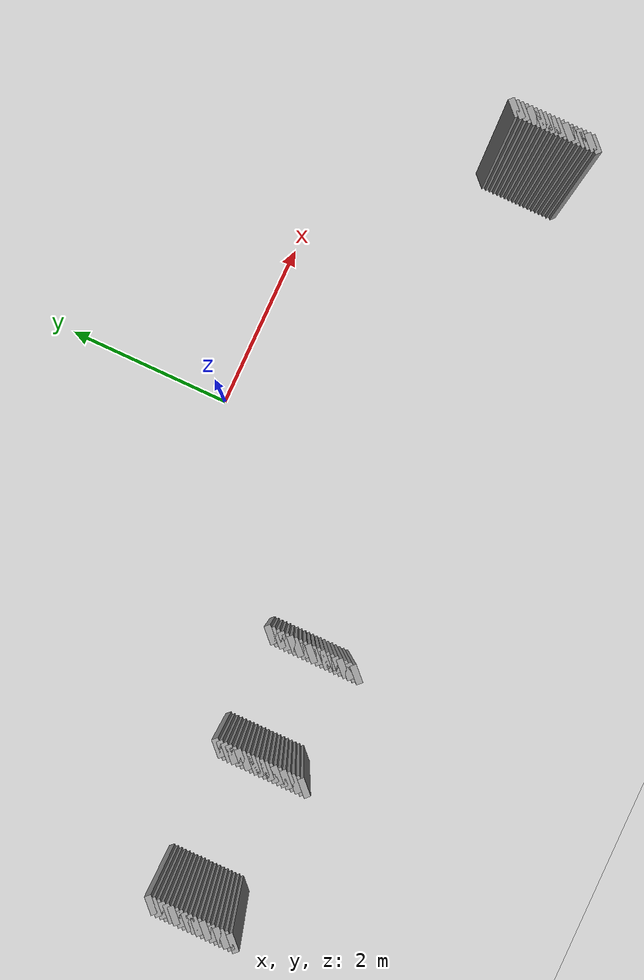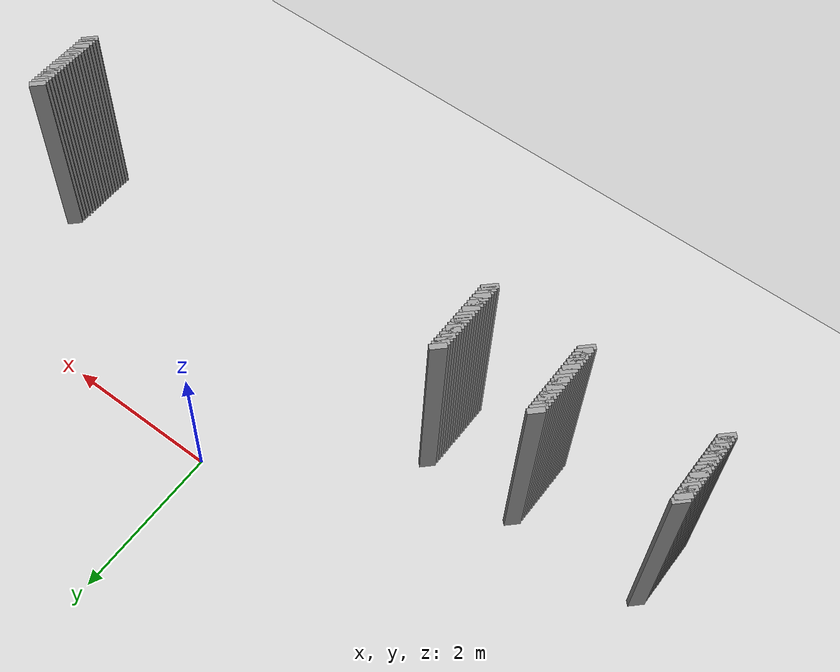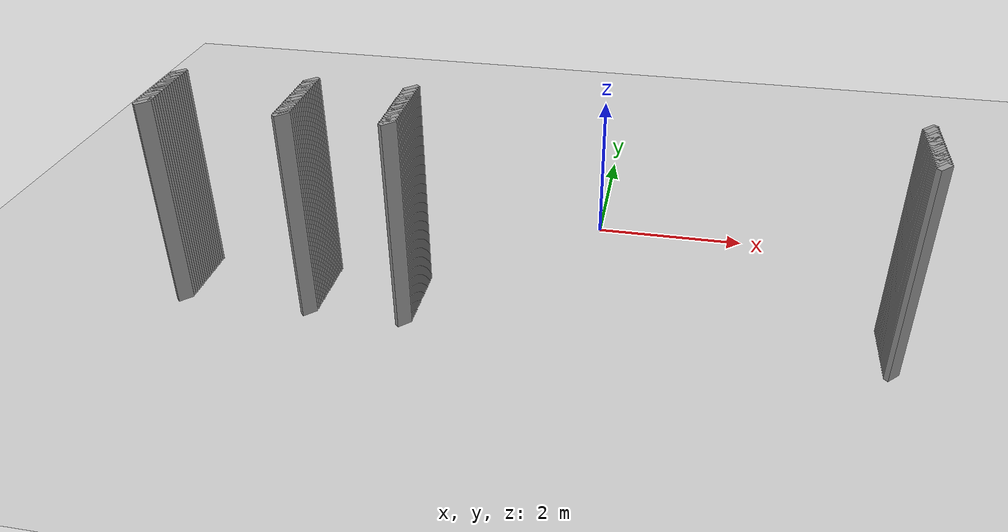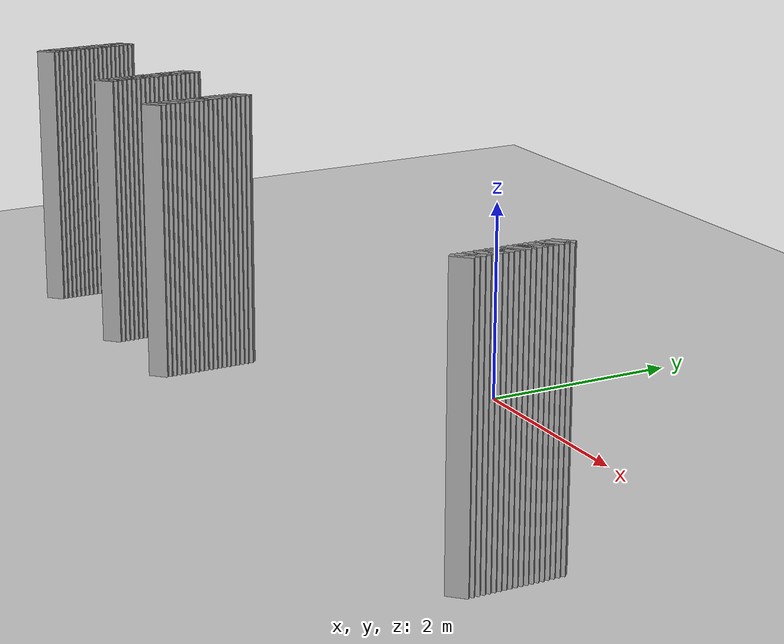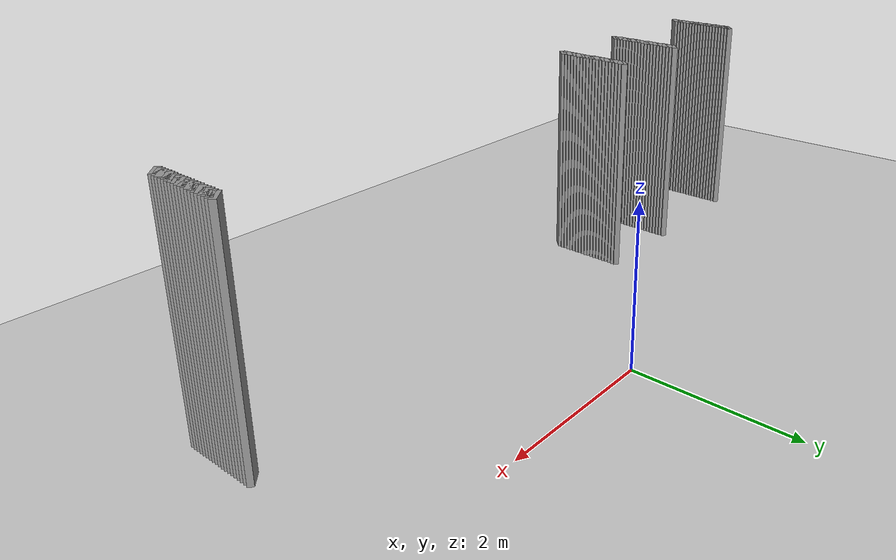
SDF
<sdf version="1.5">
 <world name="default">
  <include><uri>model://ground_plane</uri></include>
  <include><uri>model://sun</uri></include>
  <model name="grey_wall_1022">
   <static>1</static>
   <link name="link">
    <pose>-3.425 -1.675  1.4 0 0 -0.785398163397</pose>
    <collision name="collision"><geometry><box><size>0.0707106781187 .2  2.8</size></box></geometry></collision>
    <visual name="visual">
     <cast_shadows>0</cast_shadows>
     <geometry><box><size>0.0707106781187 .2  2.8</size></box></geometry>
     <material>
      <script>
       <uri>model://grey_wall/materials/scripts</uri>
       <uri>model://grey_wall/materials/textures</uri>
       <name>vrc/grey_wall</name>
      </script>
     </material>
    </visual>
   </link>
  </model>
  <model name="grey_wall_1023">
   <static>1</static>
   <link name="link">
    <pose>-2.175 -1.675  1.4 0 0 -0.785398163397</pose>
    <collision name="collision"><geometry><box><size>0.0707106781187 .2  2.8</size></box></geometry></collision>
    <visual name="visual">
     <cast_shadows>0</cast_shadows>
     <geometry><box><size>0.0707106781187 .2  2.8</size></box></geometry>
     <material>
      <script>
       <uri>model://grey_wall/materials/scripts</uri>
       <uri>model://grey_wall/materials/textures</uri>
       <name>vrc/grey_wall</name>
      </script>
     </material>
    </visual>
   </link>
  </model>
  <model name="grey_wall_1024">
   <static>1</static>
   <link name="link">
    <pose>3.725 -1.675  1.4 0 0 -0.785398163397</pose>
    <collision name="collision"><geometry><box><size>0.0707106781187 .2  2.8</size></box></geometry></collision>
    <visual name="visual">
     <cast_shadows>0</cast_shadows>
     <geometry><box><size>0.0707106781187 .2  2.8</size></box></geometry>
     <material>
      <script>
       <uri>model://grey_wall/materials/scripts</uri>
       <uri>model://grey_wall/materials/textures</uri>
       <name>vrc/grey_wall</name>
      </script>
     </material>
    </visual>
   </link>
  </model>
  <model name="grey_wall_1025">
   <static>1</static>
   <link name="link">
    <pose>-5.125 -1.725  1.4 0 0 -0.785398163397</pose>
    <collision name="collision"><geometry><box><size>0.0707106781187 .2  2.8</size></box></geometry></collision>
    <visual name="visual">
     <cast_shadows>0</cast_shadows>
     <geometry><box><size>0.0707106781187 .2  2.8</size></box></geometry>
     <material>
      <script>
       <uri>model://grey_wall/materials/scripts</uri>
       <uri>model://grey_wall/materials/textures</uri>
       <name>vrc/grey_wall</name>
      </script>
     </material>
    </visual>
   </link>
  </model>
  <model name="grey_wall_1026">
   <static>1</static>
   <link name="link">
    <pose>-3.425 -1.725  1.4 0 0 -0.785398163397</pose>
    <collision name="collision"><geometry><box><size>0.0707106781187 .2  2.8</size></box></geometry></collision>
    <visual name="visual">
     <cast_shadows>0</cast_shadows>
     <geometry><box><size>0.0707106781187 .2  2.8</size></box></geometry>
     <material>
      <script>
       <uri>model://grey_wall/materials/scripts</uri>
       <uri>model://grey_wall/materials/textures</uri>
       <name>vrc/grey_wall</name>
      </script>
     </material>
    </visual>
   </link>
  </model>
  <model name="grey_wall_1027">
   <static>1</static>
   <link name="link">
    <pose>-2.175 -1.725  1.4 0 0 -0.785398163397</pose>
    <collision name="collision"><geometry><box><size>0.0707106781187 .2  2.8</size></box></geometry></collision>
    <visual name="visual">
     <cast_shadows>0</cast_shadows>
     <geometry><box><size>0.0707106781187 .2  2.8</size></box></geometry>
     <material>
      <script>
       <uri>model://grey_wall/materials/scripts</uri>
       <uri>model://grey_wall/materials/textures</uri>
       <name>vrc/grey_wall</name>
      </script>
     </material>
    </visual>
   </link>
  </model>
  <model name="grey_wall_1028">
   <static>1</static>
   <link name="link">
    <pose>3.725 -1.725  1.4 0 0 -0.785398163397</pose>
    <collision name="collision"><geometry><box><size>0.0707106781187 .2  2.8</size></box></geometry></collision>
    <visual name="visual">
     <cast_shadows>0</cast_shadows>
     <geometry><box><size>0.0707106781187 .2  2.8</size></box></geometry>
     <material>
      <script>
       <uri>model://grey_wall/materials/scripts</uri>
       <uri>model://grey_wall/materials/textures</uri>
       <name>vrc/grey_wall</name>
      </script>
     </material>
    </visual>
   </link>
  </model>
  <model name="grey_wall_1029">
   <static>1</static>
   <link name="link">
    <pose>-5.125 -1.775  1.4 0 0 -0.785398163397</pose>
    <collision name="collision"><geometry><box><size>0.0707106781187 .2  2.8</size></box></geometry></collision>
    <visual name="visual">
     <cast_shadows>0</cast_shadows>
     <geometry><box><size>0.0707106781187 .2  2.8</size></box></geometry>
     <material>
      <script>
       <uri>model://grey_wall/materials/scripts</uri>
       <uri>model://grey_wall/materials/textures</uri>
       <name>vrc/grey_wall</name>
      </script>
     </material>
    </visual>
   </link>
  </model>
  <model name="grey_wall_1030">
   <static>1</static>
   <link name="link">
    <pose>-3.425 -1.775  1.4 0 0 -0.785398163397</pose>
    <collision name="collision"><geometry><box><size>0.0707106781187 .2  2.8</size></box></geometry></collision>
    <visual name="visual">
     <cast_shadows>0</cast_shadows>
     <geometry><box><size>0.0707106781187 .2  2.8</size></box></geometry>
     <material>
      <script>
       <uri>model://grey_wall/materials/scripts</uri>
       <uri>model://grey_wall/materials/textures</uri>
       <name>vrc/grey_wall</name>
      </script>
     </material>
    </visual>
   </link>
  </model>
  <model name="grey_wall_1031">
   <static>1</static>
   <link name="link">
    <pose>-2.175 -1.775  1.4 0 0 -0.785398163397</pose>
    <collision name="collision"><geometry><box><size>0.0707106781187 .2  2.8</size></box></geometry></collision>
    <visual name="visual">
     <cast_shadows>0</cast_shadows>
     <geometry><box><size>0.0707106781187 .2  2.8</size></box></geometry>
     <material>
      <script>
       <uri>model://grey_wall/materials/scripts</uri>
       <uri>model://grey_wall/materials/textures</uri>
       <name>vrc/grey_wall</name>
      </script>
     </material>
    </visual>
   </link>
  </model>
  <model name="grey_wall_1032">
   <static>1</static>
   <link name="link">
    <pose>3.725 -1.775  1.4 0 0 -0.785398163397</pose>
    <collision name="collision"><geometry><box><size>0.0707106781187 .2  2.8</size></box></geometry></collision>
    <visual name="visual">
     <cast_shadows>0</cast_shadows>
     <geometry><box><size>0.0707106781187 .2  2.8</size></box></geometry>
     <material>
      <script>
       <uri>model://grey_wall/materials/scripts</uri>
       <uri>model://grey_wall/materials/textures</uri>
       <name>vrc/grey_wall</name>
      </script>
     </material>
    </visual>
   </link>
  </model>
  <model name="grey_wall_1033">
   <static>1</static>
   <link name="link">
    <pose>-5.125 -1.825  1.4 0 0 -0.785398163397</pose>
    <collision name="collision"><geometry><box><size>0.0707106781187 .2  2.8</size></box></geometry></collision>
    <visual name="visual">
     <cast_shadows>0</cast_shadows>
     <geometry><box><size>0.0707106781187 .2  2.8</size></box></geometry>
     <material>
      <script>
       <uri>model://grey_wall/materials/scripts</uri>
       <uri>model://grey_wall/materials/textures</uri>
       <name>vrc/grey_wall</name>
      </script>
     </material>
    </visual>
   </link>
  </model>
  <model name="grey_wall_1034">
   <static>1</static>
   <link name="link">
    <pose>-3.425 -1.825  1.4 0 0 -0.785398163397</pose>
    <collision name="collision"><geometry><box><size>0.0707106781187 .2  2.8</size></box></geometry></collision>
    <visual name="visual">
     <cast_shadows>0</cast_shadows>
     <geometry><box><size>0.0707106781187 .2  2.8</size></box></geometry>
     <material>
      <script>
       <uri>model://grey_wall/materials/scripts</uri>
       <uri>model://grey_wall/materials/textures</uri>
       <name>vrc/grey_wall</name>
      </script>
     </material>
    </visual>
   </link>
  </model>
  <model name="grey_wall_1035">
   <static>1</static>
   <link name="link">
    <pose>-2.175 -1.825  1.4 0 0 -0.785398163397</pose>
    <collision name="collision"><geometry><box><size>0.0707106781187 .2  2.8</size></box></geometry></collision>
    <visual name="visual">
     <cast_shadows>0</cast_shadows>
     <geometry><box><size>0.0707106781187 .2  2.8</size></box></geometry>
     <material>
      <script>
       <uri>model://grey_wall/materials/scripts</uri>
       <uri>model://grey_wall/materials/textures</uri>
       <name>vrc/grey_wall</name>
      </script>
     </material>
    </visual>
   </link>
  </model>
  <model name="grey_wall_1036">
   <static>1</static>
   <link name="link">
    <pose>3.725 -1.825  1.4 0 0 -0.785398163397</pose>
    <collision name="collision"><geometry><box><size>0.0707106781187 .2  2.8</size></box></geometry></collision>
    <visual name="visual">
     <cast_shadows>0</cast_shadows>
     <geometry><box><size>0.0707106781187 .2  2.8</size></box></geometry>
     <material>
      <script>
       <uri>model://grey_wall/materials/scripts</uri>
       <uri>model://grey_wall/materials/textures</uri>
       <name>vrc/grey_wall</name>
      </script>
     </material>
    </visual>
   </link>
  </model>
  <model name="grey_wall_1037">
   <static>1</static>
   <link name="link">
    <pose>-5.125 -1.875  1.4 0 0 -0.785398163397</pose>
    <collision name="collision"><geometry><box><size>0.0707106781187 .2  2.8</size></box></geometry></collision>
    <visual name="visual">
     <cast_shadows>0</cast_shadows>
     <geometry><box><size>0.0707106781187 .2  2.8</size></box></geometry>
     <material>
      <script>
       <uri>model://grey_wall/materials/scripts</uri>
       <uri>model://grey_wall/materials/textures</uri>
       <name>vrc/grey_wall</name>
      </script>
     </material>
    </visual>
   </link>
  </model>
  <model name="grey_wall_1038">
   <static>1</static>
   <link name="link">
    <pose>-3.425 -1.875  1.4 0 0 -0.785398163397</pose>
    <collision name="collision"><geometry><box><size>0.0707106781187 .2  2.8</size></box></geometry></collision>
    <visual name="visual">
     <cast_shadows>0</cast_shadows>
     <geometry><box><size>0.0707106781187 .2  2.8</size></box></geometry>
     <material>
      <script>
       <uri>model://grey_wall/materials/scripts</uri>
       <uri>model://grey_wall/materials/textures</uri>
       <name>vrc/grey_wall</name>
      </script>
     </material>
    </visual>
   </link>
  </model>
  <model name="grey_wall_1039">
   <static>1</static>
   <link name="link">
    <pose>-2.175 -1.875  1.4 0 0 -0.785398163397</pose>
    <collision name="collision"><geometry><box><size>0.0707106781187 .2  2.8</size></box></geometry></collision>
    <visual name="visual">
     <cast_shadows>0</cast_shadows>
     <geometry><box><size>0.0707106781187 .2  2.8</size></box></geometry>
     <material>
      <script>
       <uri>model://grey_wall/materials/scripts</uri>
       <uri>model://grey_wall/materials/textures</uri>
       <name>vrc/grey_wall</name>
      </script>
     </material>
    </visual>
   </link>
  </model>
  <model name="grey_wall_1040">
   <static>1</static>
   <link name="link">
    <pose>3.725 -1.875  1.4 0 0 -0.785398163397</pose>
    <collision name="collision"><geometry><box><size>0.0707106781187 .2  2.8</size></box></geometry></collision>
    <visual name="visual">
     <cast_shadows>0</cast_shadows>
     <geometry><box><size>0.0707106781187 .2  2.8</size></box></geometry>
     <material>
      <script>
       <uri>model://grey_wall/materials/scripts</uri>
       <uri>model://grey_wall/materials/textures</uri>
       <name>vrc/grey_wall</name>
      </script>
     </material>
    </visual>
   </link>
  </model>
  <model name="grey_wall_1041">
   <static>1</static>
   <link name="link">
    <pose>-5.125 -1.925  1.4 0 0 -0.785398163397</pose>
    <collision name="collision"><geometry><box><size>0.0707106781187 .2  2.8</size></box></geometry></collision>
    <visual name="visual">
     <cast_shadows>0</cast_shadows>
     <geometry><box><size>0.0707106781187 .2  2.8</size></box></geometry>
     <material>
      <script>
       <uri>model://grey_wall/materials/scripts</uri>
       <uri>model://grey_wall/materials/textures</uri>
       <name>vrc/grey_wall</name>
      </script>
     </material>
    </visual>
   </link>
  </model>
  <model name="grey_wall_1042">
   <static>1</static>
   <link name="link">
    <pose>-3.425 -1.925  1.4 0 0 -0.785398163397</pose>
    <collision name="collision"><geometry><box><size>0.0707106781187 .2  2.8</size></box></geometry></collision>
    <visual name="visual">
     <cast_shadows>0</cast_shadows>
     <geometry><box><size>0.0707106781187 .2  2.8</size></box></geometry>
     <material>
      <script>
       <uri>model://grey_wall/materials/scripts</uri>
       <uri>model://grey_wall/materials/textures</uri>
       <name>vrc/grey_wall</name>
      </script>
     </material>
    </visual>
   </link>
  </model>
  <model name="grey_wall_1043">
   <static>1</static>
   <link name="link">
    <pose>-2.175 -1.925  1.4 0 0 -0.785398163397</pose>
    <collision name="collision"><geometry><box><size>0.0707106781187 .2  2.8</size></box></geometry></collision>
    <visual name="visual">
     <cast_shadows>0</cast_shadows>
     <geometry><box><size>0.0707106781187 .2  2.8</size></box></geometry>
     <material>
      <script>
       <uri>model://grey_wall/materials/scripts</uri>
       <uri>model://grey_wall/materials/textures</uri>
       <name>vrc/grey_wall</name>
      </script>
     </material>
    </visual>
   </link>
  </model>
  <model name="grey_wall_1044">
   <static>1</static>
   <link name="link">
    <pose>3.725 -1.925  1.4 0 0 -0.785398163397</pose>
    <collision name="collision"><geometry><box><size>0.0707106781187 .2  2.8</size></box></geometry></collision>
    <visual name="visual">
     <cast_shadows>0</cast_shadows>
     <geometry><box><size>0.0707106781187 .2  2.8</size></box></geometry>
     <material>
      <script>
       <uri>model://grey_wall/materials/scripts</uri>
       <uri>model://grey_wall/materials/textures</uri>
       <name>vrc/grey_wall</name>
      </script>
     </material>
    </visual>
   </link>
  </model>
  <model name="grey_wall_1045">
   <static>1</static>
   <link name="link">
    <pose>-5.125 -1.975  1.4 0 0 -0.785398163397</pose>
    <collision name="collision"><geometry><box><size>0.0707106781187 .2  2.8</size></box></geometry></collision>
    <visual name="visual">
     <cast_shadows>0</cast_shadows>
     <geometry><box><size>0.0707106781187 .2  2.8</size></box></geometry>
     <material>
      <script>
       <uri>model://grey_wall/materials/scripts</uri>
       <uri>model://grey_wall/materials/textures</uri>
       <name>vrc/grey_wall</name>
      </script>
     </material>
    </visual>
   </link>
  </model>
  <model name="grey_wall_1046">
   <static>1</static>
   <link name="link">
    <pose>-3.425 -1.975  1.4 0 0 -0.785398163397</pose>
    <collision name="collision"><geometry><box><size>0.0707106781187 .2  2.8</size></box></geometry></collision>
    <visual name="visual">
     <cast_shadows>0</cast_shadows>
     <geometry><box><size>0.0707106781187 .2  2.8</size></box></geometry>
     <material>
      <script>
       <uri>model://grey_wall/materials/scripts</uri>
       <uri>model://grey_wall/materials/textures</uri>
       <name>vrc/grey_wall</name>
      </script>
     </material>
    </visual>
   </link>
  </model>
  <model name="grey_wall_1047">
   <static>1</static>
   <link name="link">
    <pose>-2.175 -1.975  1.4 0 0 -0.785398163397</pose>
    <collision name="collision"><geometry><box><size>0.0707106781187 .2  2.8</size></box></geometry></collision>
    <visual name="visual">
     <cast_shadows>0</cast_shadows>
     <geometry><box><size>0.0707106781187 .2  2.8</size></box></geometry>
     <material>
      <script>
       <uri>model://grey_wall/materials/scripts</uri>
       <uri>model://grey_wall/materials/textures</uri>
       <name>vrc/grey_wall</name>
      </script>
     </material>
    </visual>
   </link>
  </model>
  <model name="grey_wall_1048">
   <static>1</static>
   <link name="link">
    <pose>3.725 -1.975  1.4 0 0 -0.785398163397</pose>
    <collision name="collision"><geometry><box><size>0.0707106781187 .2  2.8</size></box></geometry></collision>
    <visual name="visual">
     <cast_shadows>0</cast_shadows>
     <geometry><box><size>0.0707106781187 .2  2.8</size></box></geometry>
     <material>
      <script>
       <uri>model://grey_wall/materials/scripts</uri>
       <uri>model://grey_wall/materials/textures</uri>
       <name>vrc/grey_wall</name>
      </script>
     </material>
    </visual>
   </link>
  </model>
  <model name="grey_wall_1049">
   <static>1</static>
   <link name="link">
    <pose>-5.125 -2.025  1.4 0 0 -0.785398163397</pose>
    <collision name="collision"><geometry><box><size>0.0707106781187 .2  2.8</size></box></geometry></collision>
    <visual name="visual">
     <cast_shadows>0</cast_shadows>
     <geometry><box><size>0.0707106781187 .2  2.8</size></box></geometry>
     <material>
      <script>
       <uri>model://grey_wall/materials/scripts</uri>
       <uri>model://grey_wall/materials/textures</uri>
       <name>vrc/grey_wall</name>
      </script>
     </material>
    </visual>
   </link>
  </model>
  <model name="grey_wall_1050">
   <static>1</static>
   <link name="link">
    <pose>-3.425 -2.025  1.4 0 0 -0.785398163397</pose>
    <collision name="collision"><geometry><box><size>0.0707106781187 .2  2.8</size></box></geometry></collision>
    <visual name="visual">
     <cast_shadows>0</cast_shadows>
     <geometry><box><size>0.0707106781187 .2  2.8</size></box></geometry>
     <material>
      <script>
       <uri>model://grey_wall/materials/scripts</uri>
       <uri>model://grey_wall/materials/textures</uri>
       <name>vrc/grey_wall</name>
      </script>
     </material>
    </visual>
   </link>
  </model>
  <model name="grey_wall_1051">
   <static>1</static>
   <link name="link">
    <pose>-2.175 -2.025  1.4 0 0 -0.785398163397</pose>
    <collision name="collision"><geometry><box><size>0.0707106781187 .2  2.8</size></box></geometry></collision>
    <visual name="visual">
     <cast_shadows>0</cast_shadows>
     <geometry><box><size>0.0707106781187 .2  2.8</size></box></geometry>
     <material>
      <script>
       <uri>model://grey_wall/materials/scripts</uri>
       <uri>model://grey_wall/materials/textures</uri>
       <name>vrc/grey_wall</name>
      </script>
     </material>
    </visual>
   </link>
  </model>
  <model name="grey_wall_1052">
   <static>1</static>
   <link name="link">
    <pose>3.725 -2.025  1.4 0 0 -0.785398163397</pose>
    <collision name="collision"><geometry><box><size>0.0707106781187 .2  2.8</size></box></geometry></collision>
    <visual name="visual">
     <cast_shadows>0</cast_shadows>
     <geometry><box><size>0.0707106781187 .2  2.8</size></box></geometry>
     <material>
      <script>
       <uri>model://grey_wall/materials/scripts</uri>
       <uri>model://grey_wall/materials/textures</uri>
       <name>vrc/grey_wall</name>
      </script>
     </material>
    </visual>
   </link>
  </model>
  <model name="grey_wall_1053">
   <static>1</static>
   <link name="link">
    <pose>-5.125 -2.075  1.4 0 0 -0.785398163397</pose>
    <collision name="collision"><geometry><box><size>0.0707106781187 .2  2.8</size></box></geometry></collision>
    <visual name="visual">
     <cast_shadows>0</cast_shadows>
     <geometry><box><size>0.0707106781187 .2  2.8</size></box></geometry>
     <material>
      <script>
       <uri>model://grey_wall/materials/scripts</uri>
       <uri>model://grey_wall/materials/textures</uri>
       <name>vrc/grey_wall</name>
      </script>
     </material>
    </visual>
   </link>
  </model>
  <model name="grey_wall_1054">
   <static>1</static>
   <link name="link">
    <pose>-3.425 -2.075  1.4 0 0 -0.785398163397</pose>
    <collision name="collision"><geometry><box><size>0.0707106781187 .2  2.8</size></box></geometry></collision>
    <visual name="visual">
     <cast_shadows>0</cast_shadows>
     <geometry><box><size>0.0707106781187 .2  2.8</size></box></geometry>
     <material>
      <script>
       <uri>model://grey_wall/materials/scripts</uri>
       <uri>model://grey_wall/materials/textures</uri>
       <name>vrc/grey_wall</name>
      </script>
     </material>
    </visual>
   </link>
  </model>
  <model name="grey_wall_1055">
   <static>1</static>
   <link name="link">
    <pose>-2.175 -2.075  1.4 0 0 -0.785398163397</pose>
    <collision name="collision"><geometry><box><size>0.0707106781187 .2  2.8</size></box></geometry></collision>
    <visual name="visual">
     <cast_shadows>0</cast_shadows>
     <geometry><box><size>0.0707106781187 .2  2.8</size></box></geometry>
     <material>
      <script>
       <uri>model://grey_wall/materials/scripts</uri>
       <uri>model://grey_wall/materials/textures</uri>
       <name>vrc/grey_wall</name>
      </script>
     </material>
    </visual>
   </link>
  </model>
  <model name="grey_wall_1056">
   <static>1</static>
   <link name="link">
    <pose>3.725 -2.075  1.4 0 0 -0.785398163397</pose>
    <collision name="collision"><geometry><box><size>0.0707106781187 .2  2.8</size></box></geometry></collision>
    <visual name="visual">
     <cast_shadows>0</cast_shadows>
     <geometry><box><size>0.0707106781187 .2  2.8</size></box></geometry>
     <material>
      <script>
       <uri>model://grey_wall/materials/scripts</uri>
       <uri>model://grey_wall/materials/textures</uri>
       <name>vrc/grey_wall</name>
      </script>
     </material>
    </visual>
   </link>
  </model>
  <model name="grey_wall_1057">
   <static>1</static>
   <link name="link">
    <pose>-5.125 -2.125  1.4 0 0 -0.785398163397</pose>
    <collision name="collision"><geometry><box><size>0.0707106781187 .2  2.8</size></box></geometry></collision>
    <visual name="visual">
     <cast_shadows>0</cast_shadows>
     <geometry><box><size>0.0707106781187 .2  2.8</size></box></geometry>
     <material>
      <script>
       <uri>model://grey_wall/materials/scripts</uri>
       <uri>model://grey_wall/materials/textures</uri>
       <name>vrc/grey_wall</name>
      </script>
     </material>
    </visual>
   </link>
  </model>
  <model name="grey_wall_1058">
   <static>1</static>
   <link name="link">
    <pose>-3.425 -2.125  1.4 0 0 -0.785398163397</pose>
    <collision name="collision"><geometry><box><size>0.0707106781187 .2  2.8</size></box></geometry></collision>
    <visual name="visual">
     <cast_shadows>0</cast_shadows>
     <geometry><box><size>0.0707106781187 .2  2.8</size></box></geometry>
     <material>
      <script>
       <uri>model://grey_wall/materials/scripts</uri>
       <uri>model://grey_wall/materials/textures</uri>
       <name>vrc/grey_wall</name>
      </script>
     </material>
    </visual>
   </link>
  </model>
  <model name="grey_wall_1059">
   <static>1</static>
   <link name="link">
    <pose>-2.175 -2.125  1.4 0 0 -0.785398163397</pose>
    <collision name="collision"><geometry><box><size>0.0707106781187 .2  2.8</size></box></geometry></collision>
    <visual name="visual">
     <cast_shadows>0</cast_shadows>
     <geometry><box><size>0.0707106781187 .2  2.8</size></box></geometry>
     <material>
      <script>
       <uri>model://grey_wall/materials/scripts</uri>
       <uri>model://grey_wall/materials/textures</uri>
       <name>vrc/grey_wall</name>
      </script>
     </material>
    </visual>
   </link>
  </model>
  <model name="grey_wall_1060">
   <static>1</static>
   <link name="link">
    <pose>3.725 -2.125  1.4 0 0 -0.785398163397</pose>
    <collision name="collision"><geometry><box><size>0.0707106781187 .2  2.8</size></box></geometry></collision>
    <visual name="visual">
     <cast_shadows>0</cast_shadows>
     <geometry><box><size>0.0707106781187 .2  2.8</size></box></geometry>
     <material>
      <script>
       <uri>model://grey_wall/materials/scripts</uri>
       <uri>model://grey_wall/materials/textures</uri>
       <name>vrc/grey_wall</name>
      </script>
     </material>
    </visual>
   </link>
  </model>
  <model name="grey_wall_1061">
   <static>1</static>
   <link name="link">
    <pose>-5.125 -2.175  1.4 0 0 -0.785398163397</pose>
    <collision name="collision"><geometry><box><size>0.0707106781187 .2  2.8</size></box></geometry></collision>
    <visual name="visual">
     <cast_shadows>0</cast_shadows>
     <geometry><box><size>0.0707106781187 .2  2.8</size></box></geometry>
     <material>
      <script>
       <uri>model://grey_wall/materials/scripts</uri>
       <uri>model://grey_wall/materials/textures</uri>
       <name>vrc/grey_wall</name>
      </script>
     </material>
    </visual>
   </link>
  </model>
  <model name="grey_wall_1062">
   <static>1</static>
   <link name="link">
    <pose>-3.425 -2.175  1.4 0 0 -0.785398163397</pose>
    <collision name="collision"><geometry><box><size>0.0707106781187 .2  2.8</size></box></geometry></collision>
    <visual name="visual">
     <cast_shadows>0</cast_shadows>
     <geometry><box><size>0.0707106781187 .2  2.8</size></box></geometry>
     <material>
      <script>
       <uri>model://grey_wall/materials/scripts</uri>
       <uri>model://grey_wall/materials/textures</uri>
       <name>vrc/grey_wall</name>
      </script>
     </material>
    </visual>
   </link>
  </model>
  <model name="grey_wall_1063">
   <static>1</static>
   <link name="link">
    <pose>-2.175 -2.175  1.4 0 0 -0.785398163397</pose>
    <collision name="collision"><geometry><box><size>0.0707106781187 .2  2.8</size></box></geometry></collision>
    <visual name="visual">
     <cast_shadows>0</cast_shadows>
     <geometry><box><size>0.0707106781187 .2  2.8</size></box></geometry>
     <material>
      <script>
       <uri>model://grey_wall/materials/scripts</uri>
       <uri>model://grey_wall/materials/textures</uri>
       <name>vrc/grey_wall</name>
      </script>
     </material>
    </visual>
   </link>
  </model>
  <model name="grey_wall_1064">
   <static>1</static>
   <link name="link">
    <pose>3.725 -2.175  1.4 0 0 -0.785398163397</pose>
    <collision name="collision"><geometry><box><size>0.0707106781187 .2  2.8</size></box></geometry></collision>
    <visual name="visual">
     <cast_shadows>0</cast_shadows>
     <geometry><box><size>0.0707106781187 .2  2.8</size></box></geometry>
     <material>
      <script>
       <uri>model://grey_wall/materials/scripts</uri>
       <uri>model://grey_wall/materials/textures</uri>
       <name>vrc/grey_wall</name>
      </script>
     </material>
    </visual>
   </link>
  </model>
  <model name="grey_wall_1065">
   <static>1</static>
   <link name="link">
    <pose>-5.125 -2.225  1.4 0 0 -0.785398163397</pose>
    <collision name="collision"><geometry><box><size>0.0707106781187 .2  2.8</size></box></geometry></collision>
    <visual name="visual">
     <cast_shadows>0</cast_shadows>
     <geometry><box><size>0.0707106781187 .2  2.8</size></box></geometry>
     <material>
      <script>
       <uri>model://grey_wall/materials/scripts</uri>
       <uri>model://grey_wall/materials/textures</uri>
       <name>vrc/grey_wall</name>
      </script>
     </material>
    </visual>
   </link>
  </model>
  <model name="grey_wall_1066">
   <static>1</static>
   <link name="link">
    <pose>-3.425 -2.225  1.4 0 0 -0.785398163397</pose>
    <collision name="collision"><geometry><box><size>0.0707106781187 .2  2.8</size></box></geometry></collision>
    <visual name="visual">
     <cast_shadows>0</cast_shadows>
     <geometry><box><size>0.0707106781187 .2  2.8</size></box></geometry>
     <material>
      <script>
       <uri>model://grey_wall/materials/scripts</uri>
       <uri>model://grey_wall/materials/textures</uri>
       <name>vrc/grey_wall</name>
      </script>
     </material>
    </visual>
   </link>
  </model>
  <model name="grey_wall_1067">
   <static>1</static>
   <link name="link">
    <pose>-2.175 -2.225  1.4 0 0 -0.785398163397</pose>
    <collision name="collision"><geometry><box><size>0.0707106781187 .2  2.8</size></box></geometry></collision>
    <visual name="visual">
     <cast_shadows>0</cast_shadows>
     <geometry><box><size>0.0707106781187 .2  2.8</size></box></geometry>
     <material>
      <script>
       <uri>model://grey_wall/materials/scripts</uri>
       <uri>model://grey_wall/materials/textures</uri>
       <name>vrc/grey_wall</name>
      </script>
     </material>
    </visual>
   </link>
  </model>
  <model name="grey_wall_1068">
   <static>1</static>
   <link name="link">
    <pose>3.725 -2.225  1.4 0 0 -0.785398163397</pose>
    <collision name="collision"><geometry><box><size>0.0707106781187 .2  2.8</size></box></geometry></collision>
    <visual name="visual">
     <cast_shadows>0</cast_shadows>
     <geometry><box><size>0.0707106781187 .2  2.8</size></box></geometry>
     <material>
      <script>
       <uri>model://grey_wall/materials/scripts</uri>
       <uri>model://grey_wall/materials/textures</uri>
       <name>vrc/grey_wall</name>
      </script>
     </material>
    </visual>
   </link>
  </model>
  <model name="grey_wall_1069">
   <static>1</static>
   <link name="link">
    <pose>-5.125 -2.275  1.4 0 0 -0.785398163397</pose>
    <collision name="collision"><geometry><box><size>0.0707106781187 .2  2.8</size></box></geometry></collision>
    <visual name="visual">
     <cast_shadows>0</cast_shadows>
     <geometry><box><size>0.0707106781187 .2  2.8</size></box></geometry>
     <material>
      <script>
       <uri>model://grey_wall/materials/scripts</uri>
       <uri>model://grey_wall/materials/textures</uri>
       <name>vrc/grey_wall</name>
      </script>
     </material>
    </visual>
   </link>
  </model>
  <model name="grey_wall_1070">
   <static>1</static>
   <link name="link">
    <pose>-3.425 -2.275  1.4 0 0 -0.785398163397</pose>
    <collision name="collision"><geometry><box><size>0.0707106781187 .2  2.8</size></box></geometry></collision>
    <visual name="visual">
     <cast_shadows>0</cast_shadows>
     <geometry><box><size>0.0707106781187 .2  2.8</size></box></geometry>
     <material>
      <script>
       <uri>model://grey_wall/materials/scripts</uri>
       <uri>model://grey_wall/materials/textures</uri>
       <name>vrc/grey_wall</name>
      </script>
     </material>
    </visual>
   </link>
  </model>
  <model name="grey_wall_1071">
   <static>1</static>
   <link name="link">
    <pose>-2.175 -2.275  1.4 0 0 -0.785398163397</pose>
    <collision name="collision"><geometry><box><size>0.0707106781187 .2  2.8</size></box></geometry></collision>
    <visual name="visual">
     <cast_shadows>0</cast_shadows>
     <geometry><box><size>0.0707106781187 .2  2.8</size></box></geometry>
     <material>
      <script>
       <uri>model://grey_wall/materials/scripts</uri>
       <uri>model://grey_wall/materials/textures</uri>
       <name>vrc/grey_wall</name>
      </script>
     </material>
    </visual>
   </link>
  </model>
  <model name="grey_wall_1072">
   <static>1</static>
   <link name="link">
    <pose>3.725 -2.275  1.4 0 0 -0.785398163397</pose>
    <collision name="collision"><geometry><box><size>0.0707106781187 .2  2.8</size></box></geometry></collision>
    <visual name="visual">
     <cast_shadows>0</cast_shadows>
     <geometry><box><size>0.0707106781187 .2  2.8</size></box></geometry>
     <material>
      <script>
       <uri>model://grey_wall/materials/scripts</uri>
       <uri>model://grey_wall/materials/textures</uri>
       <name>vrc/grey_wall</name>
      </script>
     </material>
    </visual>
   </link>
  </model>
  <model name="grey_wall_1073">
   <static>1</static>
   <link name="link">
    <pose>-5.125 -2.325  1.4 0 0 -0.785398163397</pose>
    <collision name="collision"><geometry><box><size>0.0707106781187 .2  2.8</size></box></geometry></collision>
    <visual name="visual">
     <cast_shadows>0</cast_shadows>
     <geometry><box><size>0.0707106781187 .2  2.8</size></box></geometry>
     <material>
      <script>
       <uri>model://grey_wall/materials/scripts</uri>
       <uri>model://grey_wall/materials/textures</uri>
       <name>vrc/grey_wall</name>
      </script>
     </material>
    </visual>
   </link>
  </model>
  <model name="grey_wall_1074">
   <static>1</static>
   <link name="link">
    <pose>-3.425 -2.325  1.4 0 0 -0.785398163397</pose>
    <collision name="collision"><geometry><box><size>0.0707106781187 .2  2.8</size></box></geometry></collision>
    <visual name="visual">
     <cast_shadows>0</cast_shadows>
     <geometry><box><size>0.0707106781187 .2  2.8</size></box></geometry>
     <material>
      <script>
       <uri>model://grey_wall/materials/scripts</uri>
       <uri>model://grey_wall/materials/textures</uri>
       <name>vrc/grey_wall</name>
      </script>
     </material>
    </visual>
   </link>
  </model>
  <model name="grey_wall_1075">
   <static>1</static>
   <link name="link">
    <pose>-2.175 -2.325  1.4 0 0 -0.785398163397</pose>
    <collision name="collision"><geometry><box><size>0.0707106781187 .2  2.8</size></box></geometry></collision>
    <visual name="visual">
     <cast_shadows>0</cast_shadows>
     <geometry><box><size>0.0707106781187 .2  2.8</size></box></geometry>
     <material>
      <script>
       <uri>model://grey_wall/materials/scripts</uri>
       <uri>model://grey_wall/materials/textures</uri>
       <name>vrc/grey_wall</name>
      </script>
     </material>
    </visual>
   </link>
  </model>
  <model name="grey_wall_1076">
   <static>1</static>
   <link name="link">
    <pose>3.725 -2.325  1.4 0 0 -0.785398163397</pose>
    <collision name="collision"><geometry><box><size>0.0707106781187 .2  2.8</size></box></geometry></collision>
    <visual name="visual">
     <cast_shadows>0</cast_shadows>
     <geometry><box><size>0.0707106781187 .2  2.8</size></box></geometry>
     <material>
      <script>
       <uri>model://grey_wall/materials/scripts</uri>
       <uri>model://grey_wall/materials/textures</uri>
       <name>vrc/grey_wall</name>
      </script>
     </material>
    </visual>
   </link>
  </model>
  <model name="grey_wall_1077">
   <static>1</static>
   <link name="link">
    <pose>-5.125 -2.375  1.4 0 0 -0.785398163397</pose>
    <collision name="collision"><geometry><box><size>0.0707106781187 .2  2.8</size></box></geometry></collision>
    <visual name="visual">
     <cast_shadows>0</cast_shadows>
     <geometry><box><size>0.0707106781187 .2  2.8</size></box></geometry>
     <material>
      <script>
       <uri>model://grey_wall/materials/scripts</uri>
       <uri>model://grey_wall/materials/textures</uri>
       <name>vrc/grey_wall</name>
      </script>
     </material>
    </visual>
   </link>
  </model>
  <model name="grey_wall_1078">
   <static>1</static>
   <link name="link">
    <pose>-3.425 -2.375  1.4 0 0 -0.785398163397</pose>
    <collision name="collision"><geometry><box><size>0.0707106781187 .2  2.8</size></box></geometry></collision>
    <visual name="visual">
     <cast_shadows>0</cast_shadows>
     <geometry><box><size>0.0707106781187 .2  2.8</size></box></geometry>
     <material>
      <script>
       <uri>model://grey_wall/materials/scripts</uri>
       <uri>model://grey_wall/materials/textures</uri>
       <name>vrc/grey_wall</name>
      </script>
     </material>
    </visual>
   </link>
  </model>
  <model name="grey_wall_1079">
   <static>1</static>
   <link name="link">
    <pose>-2.175 -2.375  1.4 0 0 -0.785398163397</pose>
    <collision name="collision"><geometry><box><size>0.0707106781187 .2  2.8</size></box></geometry></collision>
    <visual name="visual">
     <cast_shadows>0</cast_shadows>
     <geometry><box><size>0.0707106781187 .2  2.8</size></box></geometry>
     <material>
      <script>
       <uri>model://grey_wall/materials/scripts</uri>
       <uri>model://grey_wall/materials/textures</uri>
       <name>vrc/grey_wall</name>
      </script>
     </material>
    </visual>
   </link>
  </model>
  <model name="grey_wall_1080">
   <static>1</static>
   <link name="link">
    <pose>3.725 -2.375  1.4 0 0 -0.785398163397</pose>
    <collision name="collision"><geometry><box><size>0.0707106781187 .2  2.8</size></box></geometry></collision>
    <visual name="visual">
     <cast_shadows>0</cast_shadows>
     <geometry><box><size>0.0707106781187 .2  2.8</size></box></geometry>
     <material>
      <script>
       <uri>model://grey_wall/materials/scripts</uri>
       <uri>model://grey_wall/materials/textures</uri>
       <name>vrc/grey_wall</name>
      </script>
     </material>
    </visual>
   </link>
  </model>
  <model name="grey_wall_1081">
   <static>1</static>
   <link name="link">
    <pose>-5.125 -2.425  1.4 0 0 -0.785398163397</pose>
    <collision name="collision"><geometry><box><size>0.0707106781187 .2  2.8</size></box></geometry></collision>
    <visual name="visual">
     <cast_shadows>0</cast_shadows>
     <geometry><box><size>0.0707106781187 .2  2.8</size></box></geometry>
     <material>
      <script>
       <uri>model://grey_wall/materials/scripts</uri>
       <uri>model://grey_wall/materials/textures</uri>
       <name>vrc/grey_wall</name>
      </script>
     </material>
    </visual>
   </link>
  </model>
  <model name="grey_wall_1082">
   <static>1</static>
   <link name="link">
    <pose>-3.425 -2.425  1.4 0 0 -0.785398163397</pose>
    <collision name="collision"><geometry><box><size>0.0707106781187 .2  2.8</size></box></geometry></collision>
    <visual name="visual">
     <cast_shadows>0</cast_shadows>
     <geometry><box><size>0.0707106781187 .2  2.8</size></box></geometry>
     <material>
      <script>
       <uri>model://grey_wall/materials/scripts</uri>
       <uri>model://grey_wall/materials/textures</uri>
       <name>vrc/grey_wall</name>
      </script>
     </material>
    </visual>
   </link>
  </model>
  <model name="grey_wall_1083">
   <static>1</static>
   <link name="link">
    <pose>-2.175 -2.425  1.4 0 0 -0.785398163397</pose>
    <collision name="collision"><geometry><box><size>0.0707106781187 .2  2.8</size></box></geometry></collision>
    <visual name="visual">
     <cast_shadows>0</cast_shadows>
     <geometry><box><size>0.0707106781187 .2  2.8</size></box></geometry>
     <material>
      <script>
       <uri>model://grey_wall/materials/scripts</uri>
       <uri>model://grey_wall/materials/textures</uri>
       <name>vrc/grey_wall</name>
      </script>
     </material>
    </visual>
   </link>
  </model>
  <model name="grey_wall_1084">
   <static>1</static>
   <link name="link">
    <pose>3.725 -2.425  1.4 0 0 -0.785398163397</pose>
    <collision name="collision"><geometry><box><size>0.0707106781187 .2  2.8</size></box></geometry></collision>
    <visual name="visual">
     <cast_shadows>0</cast_shadows>
     <geometry><box><size>0.0707106781187 .2  2.8</size></box></geometry>
     <material>
      <script>
       <uri>model://grey_wall/materials/scripts</uri>
       <uri>model://grey_wall/materials/textures</uri>
       <name>vrc/grey_wall</name>
      </script>
     </material>
    </visual>
   </link>
  </model>
  <model name="grey_wall_1085">
   <static>1</static>
   <link name="link">
    <pose>-5.125 -2.475  1.4 0 0 -0.785398163397</pose>
    <collision name="collision"><geometry><box><size>0.0707106781187 .2  2.8</size></box></geometry></collision>
    <visual name="visual">
     <cast_shadows>0</cast_shadows>
     <geometry><box><size>0.0707106781187 .2  2.8</size></box></geometry>
     <material>
      <script>
       <uri>model://grey_wall/materials/scripts</uri>
       <uri>model://grey_wall/materials/textures</uri>
       <name>vrc/grey_wall</name>
      </script>
     </material>
    </visual>
   </link>
  </model>
  <model name="grey_wall_1086">
   <static>1</static>
   <link name="link">
    <pose>-3.425 -2.475  1.4 0 0 -0.785398163397</pose>
    <collision name="collision"><geometry><box><size>0.0707106781187 .2  2.8</size></box></geometry></collision>
    <visual name="visual">
     <cast_shadows>0</cast_shadows>
     <geometry><box><size>0.0707106781187 .2  2.8</size></box></geometry>
     <material>
      <script>
       <uri>model://grey_wall/materials/scripts</uri>
       <uri>model://grey_wall/materials/textures</uri>
       <name>vrc/grey_wall</name>
      </script>
     </material>
    </visual>
   </link>
  </model>
  <model name="grey_wall_1087">
   <static>1</static>
   <link name="link">
    <pose>-2.175 -2.475  1.4 0 0 -0.785398163397</pose>
    <collision name="collision"><geometry><box><size>0.0707106781187 .2  2.8</size></box></geometry></collision>
    <visual name="visual">
     <cast_shadows>0</cast_shadows>
     <geometry><box><size>0.0707106781187 .2  2.8</size></box></geometry>
     <material>
      <script>
       <uri>model://grey_wall/materials/scripts</uri>
       <uri>model://grey_wall/materials/textures</uri>
       <name>vrc/grey_wall</name>
      </script>
     </material>
    </visual>
   </link>
  </model>
  <model name="grey_wall_1088">
   <static>1</static>
   <link name="link">
    <pose>3.725 -2.475  1.4 0 0 -0.785398163397</pose>
    <collision name="collision"><geometry><box><size>0.0707106781187 .2  2.8</size></box></geometry></collision>
    <visual name="visual">
     <cast_shadows>0</cast_shadows>
     <geometry><box><size>0.0707106781187 .2  2.8</size></box></geometry>
     <material>
      <script>
       <uri>model://grey_wall/materials/scripts</uri>
       <uri>model://grey_wall/materials/textures</uri>
       <name>vrc/grey_wall</name>
      </script>
     </material>
    </visual>
   </link>
  </model>
  <model name="grey_wall_1089">
   <static>1</static>
   <link name="link">
    <pose>-5.125 -2.525  1.4 0 0 -0.785398163397</pose>
    <collision name="collision"><geometry><box><size>0.0707106781187 .2  2.8</size></box></geometry></collision>
    <visual name="visual">
     <cast_shadows>0</cast_shadows>
     <geometry><box><size>0.0707106781187 .2  2.8</size></box></geometry>
     <material>
      <script>
       <uri>model://grey_wall/materials/scripts</uri>
       <uri>model://grey_wall/materials/textures</uri>
       <name>vrc/grey_wall</name>
      </script>
     </material>
    </visual>
   </link>
  </model>
  <model name="grey_wall_1090">
   <static>1</static>
   <link name="link">
    <pose>-3.425 -2.525  1.4 0 0 -0.785398163397</pose>
    <collision name="collision"><geometry><box><size>0.0707106781187 .2  2.8</size></box></geometry></collision>
    <visual name="visual">
     <cast_shadows>0</cast_shadows>
     <geometry><box><size>0.0707106781187 .2  2.8</size></box></geometry>
     <material>
      <script>
       <uri>model://grey_wall/materials/scripts</uri>
       <uri>model://grey_wall/materials/textures</uri>
       <name>vrc/grey_wall</name>
      </script>
     </material>
    </visual>
   </link>
  </model>
  <model name="grey_wall_1091">
   <static>1</static>
   <link name="link">
    <pose>-2.175 -2.525  1.4 0 0 -0.785398163397</pose>
    <collision name="collision"><geometry><box><size>0.0707106781187 .2  2.8</size></box></geometry></collision>
    <visual name="visual">
     <cast_shadows>0</cast_shadows>
     <geometry><box><size>0.0707106781187 .2  2.8</size></box></geometry>
     <material>
      <script>
       <uri>model://grey_wall/materials/scripts</uri>
       <uri>model://grey_wall/materials/textures</uri>
       <name>vrc/grey_wall</name>
      </script>
     </material>
    </visual>
   </link>
  </model>
  <model name="grey_wall_1092">
   <static>1</static>
   <link name="link">
    <pose>3.725 -2.525  1.4 0 0 -0.785398163397</pose>
    <collision name="collision"><geometry><box><size>0.0707106781187 .2  2.8</size></box></geometry></collision>
    <visual name="visual">
     <cast_shadows>0</cast_shadows>
     <geometry><box><size>0.0707106781187 .2  2.8</size></box></geometry>
     <material>
      <script>
       <uri>model://grey_wall/materials/scripts</uri>
       <uri>model://grey_wall/materials/textures</uri>
       <name>vrc/grey_wall</name>
      </script>
     </material>
    </visual>
   </link>
  </model>
  <model name="grey_wall_1093">
   <static>1</static>
   <link name="link">
    <pose>-5.125 -2.575  1.4 0 0 -0.785398163397</pose>
    <collision name="collision"><geometry><box><size>0.0707106781187 .2  2.8</size></box></geometry></collision>
    <visual name="visual">
     <cast_shadows>0</cast_shadows>
     <geometry><box><size>0.0707106781187 .2  2.8</size></box></geometry>
     <material>
      <script>
       <uri>model://grey_wall/materials/scripts</uri>
       <uri>model://grey_wall/materials/textures</uri>
       <name>vrc/grey_wall</name>
      </script>
     </material>
    </visual>
   </link>
  </model>
  <model name="grey_wall_1094">
   <static>1</static>
   <link name="link">
    <pose>-3.425 -2.575  1.4 0 0 -0.785398163397</pose>
    <collision name="collision"><geometry><box><size>0.0707106781187 .2  2.8</size></box></geometry></collision>
    <visual name="visual">
     <cast_shadows>0</cast_shadows>
     <geometry><box><size>0.0707106781187 .2  2.8</size></box></geometry>
     <material>
      <script>
       <uri>model://grey_wall/materials/scripts</uri>
       <uri>model://grey_wall/materials/textures</uri>
       <name>vrc/grey_wall</name>
      </script>
     </material>
    </visual>
   </link>
  </model>
  <model name="grey_wall_1095">
   <static>1</static>
   <link name="link">
    <pose>-2.175 -2.575  1.4 0 0 -0.785398163397</pose>
    <collision name="collision"><geometry><box><size>0.0707106781187 .2  2.8</size></box></geometry></collision>
    <visual name="visual">
     <cast_shadows>0</cast_shadows>
     <geometry><box><size>0.0707106781187 .2  2.8</size></box></geometry>
     <material>
      <script>
       <uri>model://grey_wall/materials/scripts</uri>
       <uri>model://grey_wall/materials/textures</uri>
       <name>vrc/grey_wall</name>
      </script>
     </material>
    </visual>
   </link>
  </model>
  <model name="grey_wall_1096">
   <static>1</static>
   <link name="link">
    <pose>3.725 -2.575  1.4 0 0 -0.785398163397</pose>
    <collision name="collision"><geometry><box><size>0.0707106781187 .2  2.8</size></box></geometry></collision>
    <visual name="visual">
     <cast_shadows>0</cast_shadows>
     <geometry><box><size>0.0707106781187 .2  2.8</size></box></geometry>
     <material>
      <script>
       <uri>model://grey_wall/materials/scripts</uri>
       <uri>model://grey_wall/materials/textures</uri>
       <name>vrc/grey_wall</name>
      </script>
     </material>
    </visual>
   </link>
  </model>
  <model name="grey_wall_1097">
   <static>1</static>
   <link name="link">
    <pose>-5.125 -2.625  1.4 0 0 -0.785398163397</pose>
    <collision name="collision"><geometry><box><size>0.0707106781187 .2  2.8</size></box></geometry></collision>
    <visual name="visual">
     <cast_shadows>0</cast_shadows>
     <geometry><box><size>0.0707106781187 .2  2.8</size></box></geometry>
     <material>
      <script>
       <uri>model://grey_wall/materials/scripts</uri>
       <uri>model://grey_wall/materials/textures</uri>
       <name>vrc/grey_wall</name>
      </script>
     </material>
    </visual>
   </link>
  </model>
  <model name="grey_wall_1098">
   <static>1</static>
   <link name="link">
    <pose>-3.425 -2.625  1.4 0 0 -0.785398163397</pose>
    <collision name="collision"><geometry><box><size>0.0707106781187 .2  2.8</size></box></geometry></collision>
    <visual name="visual">
     <cast_shadows>0</cast_shadows>
     <geometry><box><size>0.0707106781187 .2  2.8</size></box></geometry>
     <material>
      <script>
       <uri>model://grey_wall/materials/scripts</uri>
       <uri>model://grey_wall/materials/textures</uri>
       <name>vrc/grey_wall</name>
      </script>
     </material>
    </visual>
   </link>
  </model>
  <model name="grey_wall_1099">
   <static>1</static>
   <link name="link">
    <pose>-2.175 -2.625  1.4 0 0 -0.785398163397</pose>
    <collision name="collision"><geometry><box><size>0.0707106781187 .2  2.8</size></box></geometry></collision>
    <visual name="visual">
     <cast_shadows>0</cast_shadows>
     <geometry><box><size>0.0707106781187 .2  2.8</size></box></geometry>
     <material>
      <script>
       <uri>model://grey_wall/materials/scripts</uri>
       <uri>model://grey_wall/materials/textures</uri>
       <name>vrc/grey_wall</name>
      </script>
     </material>
    </visual>
   </link>
  </model>
 </world>
</sdf>
